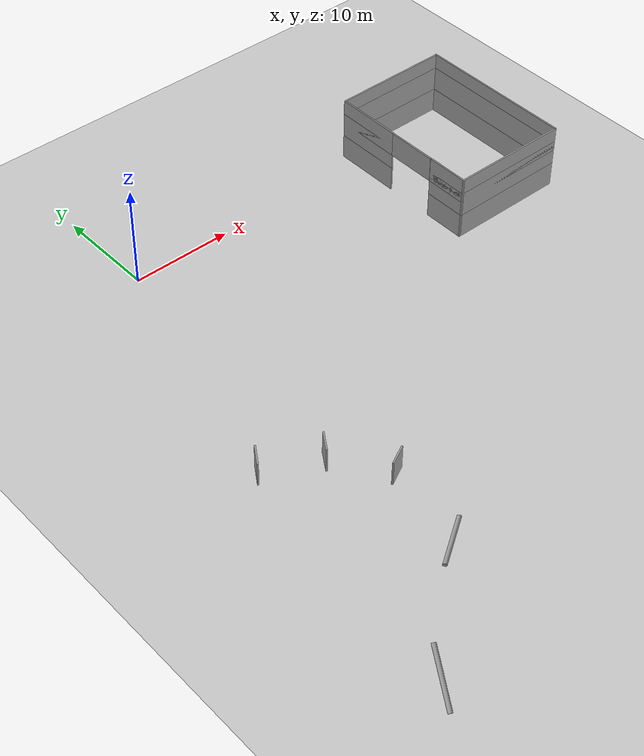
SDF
<sdf version="1.6">
 <world name="default">
  <model name="ground_plane">
   <static>1</static>
   <link name="link">
    <collision name="collision">
     <geometry><plane><normal>0 0 1</normal><size>100 100</size></plane></geometry>
     <surface><friction><ode><mu>100</mu><mu2>50</mu2></ode></friction></surface>
    </collision>
    <visual name="visual">
     <cast_shadows>0</cast_shadows>
     <geometry><plane><normal>0 0 1</normal><size>100 100</size></plane></geometry>
     <material>
      <script><uri>file://media/materials/scripts/gazebo.material</uri><name>Gazebo/Grey</name></script>
     </material>
    </visual>
   </link>
  </model>
  <model name="PaperTestTunnelHouse">
   <pose>31.9195 -6.3195 0 0 -0 0</pose>
   <link name="Wall_10">
    <collision name="Wall_10_Collision">
     <geometry><box><size>4.25 0.15 2.5</size></box></geometry>
     <pose>0 0 1.25 0 -0 0</pose>
    </collision>
    <visual name="Wall_10_Visual">
     <pose>0 0 1.25 0 -0 0</pose>
     <geometry><box><size>4.25 0.15 2.5</size></box></geometry>
     <material>
      <script><uri>file://media/materials/scripts/gazebo.material</uri><name>Gazebo/Grey</name></script>
      <ambient>1 1 1 1</ambient>
     </material>
     <meta><layer>0</layer></meta>
    </visual>
    <pose>-5.925 -5.875 0 0 -0 1.5708</pose>
   </link>
   <link name="Wall_6">
    <collision name="Wall_6_Collision">
     <geometry><box><size>6.75 0.15 2.5</size></box></geometry>
     <pose>0 0 1.25 0 -0 0</pose>
    </collision>
    <visual name="Wall_6_Visual">
     <pose>0 0 1.25 0 -0 0</pose>
     <geometry><box><size>6.75 0.15 2.5</size></box></geometry>
     <material>
      <script><uri>file://media/materials/scripts/gazebo.material</uri><name>Gazebo/Grey</name></script>
      <ambient>1 1 1 1</ambient>
     </material>
     <meta><layer>0</layer></meta>
    </visual>
    <pose>-5.925 4.625 0 0 -0 1.5708</pose>
   </link>
   <link name="Wall_7">
    <collision name="Wall_7_Collision">
     <geometry><box><size>12 0.15 2.5</size></box></geometry>
     <pose>0 0 1.25 0 -0 0</pose>
    </collision>
    <visual name="Wall_7_Visual">
     <pose>0 0 1.25 0 -0 0</pose>
     <geometry><box><size>12 0.15 2.5</size></box></geometry>
     <material>
      <script><uri>file://media/materials/scripts/gazebo.material</uri><name>Gazebo/Grey</name></script>
      <ambient>1 1 1 1</ambient>
     </material>
     <meta><layer>0</layer></meta>
    </visual>
    <pose>-0 7.925 0 0 -0 0</pose>
   </link>
   <link name="Wall_8">
    <collision name="Wall_8_Collision">
     <geometry><box><size>16 0.15 2.5</size></box></geometry>
     <pose>0 0 1.25 0 -0 0</pose>
    </collision>
    <visual name="Wall_8_Visual">
     <pose>0 0 1.25 0 -0 0</pose>
     <geometry><box><size>16 0.15 2.5</size></box></geometry>
     <material>
      <script><uri>file://media/materials/scripts/gazebo.material</uri><name>Gazebo/Grey</name></script>
      <ambient>1 1 1 1</ambient>
     </material>
     <meta><layer>0</layer></meta>
    </visual>
    <pose>5.925 0 0 0 -0 -1.5708</pose>
   </link>
   <link name="Wall_9">
    <collision name="Wall_9_Collision">
     <geometry><box><size>12 0.15 2.5</size></box></geometry>
     <pose>0 0 1.25 0 -0 0</pose>
    </collision>
    <visual name="Wall_9_Visual">
     <pose>0 0 1.25 0 -0 0</pose>
     <geometry><box><size>12 0.15 2.5</size></box></geometry>
     <material>
      <script><uri>file://media/materials/scripts/gazebo.material</uri><name>Gazebo/Grey</name></script>
      <ambient>1 1 1 1</ambient>
     </material>
     <meta><layer>0</layer></meta>
    </visual>
    <pose>-0 -7.925 0 0 -0 3.14159</pose>
   </link>
   <static>1</static>
  </model>
  <model name="PaperTestTunnelHouse_0">
   <pose>31.9195 -6.319 2.5 0 -0 0</pose>
   <link name="Wall_10">
    <collision name="Wall_10_Collision">
     <geometry><box><size>4.25 0.15 2.5</size></box></geometry>
     <pose>0 0 1.25 0 -0 0</pose>
    </collision>
    <visual name="Wall_10_Visual">
     <pose>0 0 1.25 0 -0 0</pose>
     <geometry><box><size>4.25 0.15 2.5</size></box></geometry>
     <material>
      <script><uri>file://media/materials/scripts/gazebo.material</uri><name>Gazebo/Grey</name></script>
      <ambient>1 1 1 1</ambient>
     </material>
     <meta><layer>0</layer></meta>
    </visual>
    <pose>-5.925 -5.875 0 0 -0 1.5708</pose>
   </link>
   <link name="Wall_6">
    <collision name="Wall_6_Collision">
     <geometry><box><size>6.75 0.15 2.5</size></box></geometry>
     <pose>0 0 1.25 0 -0 0</pose>
    </collision>
    <visual name="Wall_6_Visual">
     <pose>0 0 1.25 0 -0 0</pose>
     <geometry><box><size>6.75 0.15 2.5</size></box></geometry>
     <material>
      <script><uri>file://media/materials/scripts/gazebo.material</uri><name>Gazebo/Grey</name></script>
      <ambient>1 1 1 1</ambient>
     </material>
     <meta><layer>0</layer></meta>
    </visual>
    <pose>-5.925 4.625 0 0 -0 1.5708</pose>
   </link>
   <link name="Wall_7">
    <collision name="Wall_7_Collision">
     <geometry><box><size>12 0.15 2.5</size></box></geometry>
     <pose>0 0 1.25 0 -0 0</pose>
    </collision>
    <visual name="Wall_7_Visual">
     <pose>0 0 1.25 0 -0 0</pose>
     <geometry><box><size>12 0.15 2.5</size></box></geometry>
     <material>
      <script><uri>file://media/materials/scripts/gazebo.material</uri><name>Gazebo/Grey</name></script>
      <ambient>1 1 1 1</ambient>
     </material>
     <meta><layer>0</layer></meta>
    </visual>
    <pose>-0 7.925 0 0 -0 0</pose>
   </link>
   <link name="Wall_8">
    <collision name="Wall_8_Collision">
     <geometry><box><size>16 0.15 2.5</size></box></geometry>
     <pose>0 0 1.25 0 -0 0</pose>
    </collision>
    <visual name="Wall_8_Visual">
     <pose>0 0 1.25 0 -0 0</pose>
     <geometry><box><size>16 0.15 2.5</size></box></geometry>
     <material>
      <script><uri>file://media/materials/scripts/gazebo.material</uri><name>Gazebo/Grey</name></script>
      <ambient>1 1 1 1</ambient>
     </material>
     <meta><layer>0</layer></meta>
    </visual>
    <pose>5.925 0 0 0 -0 -1.5708</pose>
   </link>
   <link name="Wall_9">
    <collision name="Wall_9_Collision">
     <geometry><box><size>12 0.15 2.5</size></box></geometry>
     <pose>0 0 1.25 0 -0 0</pose>
    </collision>
    <visual name="Wall_9_Visual">
     <pose>0 0 1.25 0 -0 0</pose>
     <geometry><box><size>12 0.15 2.5</size></box></geometry>
     <material>
      <script><uri>file://media/materials/scripts/gazebo.material</uri><name>Gazebo/Grey</name></script>
      <ambient>1 1 1 1</ambient>
     </material>
     <meta><layer>0</layer></meta>
    </visual>
    <pose>-0 -7.925 0 0 -0 3.14159</pose>
   </link>
   <static>1</static>
  </model>
  <model name="5mWall">
   <pose>25.971 -7.56033 4 0 -0 0</pose>
   <link name="Wall_0">
    <collision name="Wall_0_Collision">
     <geometry><box><size>5 0.15 2.5</size></box></geometry>
     <pose>0 0 1.25 0 -0 0</pose>
    </collision>
    <visual name="Wall_0_Visual">
     <pose>0 0 1.25 0 -0 0</pose>
     <geometry><box><size>5 0.15 2.5</size></box></geometry>
     <material>
      <script><uri>file://media/materials/scripts/gazebo.material</uri><name>Gazebo/Grey</name></script>
      <ambient>1 1 1 1</ambient>
     </material>
     <meta><layer>0</layer></meta>
    </visual>
    <pose>0 -0 0 0 -0 1.5708</pose>
   </link>
   <static>1</static>
  </model>
  <model name="PaperTestTunnelHouse_1">
   <pose>31.9195 -6.319 4 0 -0 0</pose>
   <link name="Wall_10">
    <collision name="Wall_10_Collision">
     <geometry><box><size>4.25 0.15 2.5</size></box></geometry>
     <pose>0 0 1.25 0 -0 0</pose>
    </collision>
    <visual name="Wall_10_Visual">
     <pose>0 0 1.25 0 -0 0</pose>
     <geometry><box><size>4.25 0.15 2.5</size></box></geometry>
     <material>
      <script><uri>file://media/materials/scripts/gazebo.material</uri><name>Gazebo/Grey</name></script>
      <ambient>1 1 1 1</ambient>
     </material>
     <meta><layer>0</layer></meta>
    </visual>
    <pose>-5.925 -5.875 0 0 -0 1.5708</pose>
   </link>
   <link name="Wall_6">
    <collision name="Wall_6_Collision">
     <geometry><box><size>6.75 0.15 2.5</size></box></geometry>
     <pose>0 0 1.25 0 -0 0</pose>
    </collision>
    <visual name="Wall_6_Visual">
     <pose>0 0 1.25 0 -0 0</pose>
     <geometry><box><size>6.75 0.15 2.5</size></box></geometry>
     <material>
      <script><uri>file://media/materials/scripts/gazebo.material</uri><name>Gazebo/Grey</name></script>
      <ambient>1 1 1 1</ambient>
     </material>
     <meta><layer>0</layer></meta>
    </visual>
    <pose>-5.925 4.625 0 0 -0 1.5708</pose>
   </link>
   <link name="Wall_7">
    <collision name="Wall_7_Collision">
     <geometry><box><size>12 0.15 2.5</size></box></geometry>
     <pose>0 0 1.25 0 -0 0</pose>
    </collision>
    <visual name="Wall_7_Visual">
     <pose>0 0 1.25 0 -0 0</pose>
     <geometry><box><size>12 0.15 2.5</size></box></geometry>
     <material>
      <script><uri>file://media/materials/scripts/gazebo.material</uri><name>Gazebo/Grey</name></script>
      <ambient>1 1 1 1</ambient>
     </material>
     <meta><layer>0</layer></meta>
    </visual>
    <pose>-0 7.925 0 0 -0 0</pose>
   </link>
   <link name="Wall_8">
    <collision name="Wall_8_Collision">
     <geometry><box><size>16 0.15 2.5</size></box></geometry>
     <pose>0 0 1.25 0 -0 0</pose>
    </collision>
    <visual name="Wall_8_Visual">
     <pose>0 0 1.25 0 -0 0</pose>
     <geometry><box><size>16 0.15 2.5</size></box></geometry>
     <material>
      <script><uri>file://media/materials/scripts/gazebo.material</uri><name>Gazebo/Grey</name></script>
      <ambient>1 1 1 1</ambient>
     </material>
     <meta><layer>0</layer></meta>
    </visual>
    <pose>5.925 0 0 0 -0 -1.5708</pose>
   </link>
   <link name="Wall_9">
    <collision name="Wall_9_Collision">
     <geometry><box><size>12 0.15 2.5</size></box></geometry>
     <pose>0 0 1.25 0 -0 0</pose>
    </collision>
    <visual name="Wall_9_Visual">
     <pose>0 0 1.25 0 -0 0</pose>
     <geometry><box><size>12 0.15 2.5</size></box></geometry>
     <material>
      <script><uri>file://media/materials/scripts/gazebo.material</uri><name>Gazebo/Grey</name></script>
      <ambient>1 1 1 1</ambient>
     </material>
     <meta><layer>0</layer></meta>
    </visual>
    <pose>-0 -7.925 0 0 -0 3.14159</pose>
   </link>
   <static>1</static>
  </model>
  <model name="empty_pillar_1">
   <link name="link">
    <inertial>
     <mass>1</mass>
     <inertia><ixx>0.145833</ixx><ixy>0</ixy><ixz>0</ixz><iyy>0.145833</iyy><iyz>0</iyz><izz>0.125</izz></inertia>
    </inertial>
    <visual name="visual">
     <geometry><cylinder><radius>0.2</radius><length>5</length></cylinder></geometry>
     <material>
      <script><name>Gazebo/Grey</name><uri>file://media/materials/scripts/gazebo.material</uri></script>
      <shader type="vertex"><normal_map>__default__</normal_map></shader>
      <ambient>0.3 0.3 0.3 1</ambient>
      <diffuse>0.7 0.7 0.7 1</diffuse>
      <specular>0.01 0.01 0.01 1</specular>
      <emissive>0 0 0 1</emissive>
     </material>
    </visual>
    <collision name="collision">
     <geometry><cylinder><radius>0.05</radius><length>5</length></cylinder></geometry>
     <surface>
      <friction>
       <ode><mu>1</mu><mu2>1</mu2><fdir1>0 0 0</fdir1><slip1>0</slip1><slip2>0</slip2></ode>
       <torsional>
        <coefficient>1</coefficient>
        <patch_radius>0</patch_radius>
        <surface_radius>0</surface_radius>
        <use_patch_radius>1</use_patch_radius>
        <ode><slip>0</slip></ode>
       </torsional>
      </friction>
      <bounce><restitution_coefficient>0</restitution_coefficient><threshold>1e+06</threshold></bounce>
      <contact>
       <collide_without_contact>0</collide_without_contact>
       <collide_without_contact_bitmask>1</collide_without_contact_bitmask>
       <collide_bitmask>1</collide_bitmask>
       <ode>
        <soft_cfm>0</soft_cfm>
        <soft_erp>0.2</soft_erp>
        <kp>1e+13</kp>
        <kd>1</kd>
        <max_vel>0.01</max_vel>
        <min_depth>0</min_depth>
       </ode>
       <bullet>
        <split_impulse>1</split_impulse>
        <split_impulse_penetration_threshold>-0.01</split_impulse_penetration_threshold>
        <soft_cfm>0</soft_cfm>
        <soft_erp>0.2</soft_erp>
        <kp>1e+13</kp>
        <kd>1</kd>
       </bullet>
      </contact>
     </surface>
    </collision>
   </link>
   <static>0</static>
   <pose>0.363152 -39.6227 0.049995 -1.5708 0.874179 2.1469</pose>
  </model>
  <model name="empty_pillar_2">
   <link name="link">
    <inertial>
     <mass>1</mass>
     <inertia><ixx>0.145833</ixx><ixy>0</ixy><ixz>0</ixz><iyy>0.145833</iyy><iyz>0</iyz><izz>0.125</izz></inertia>
    </inertial>
    <visual name="visual">
     <geometry><cylinder><radius>0.2</radius><length>5</length></cylinder></geometry>
     <material>
      <script><name>Gazebo/Grey</name><uri>file://media/materials/scripts/gazebo.material</uri></script>
      <shader type="vertex"><normal_map>__default__</normal_map></shader>
      <ambient>0.3 0.3 0.3 1</ambient>
      <diffuse>0.7 0.7 0.7 1</diffuse>
      <specular>0.01 0.01 0.01 1</specular>
      <emissive>0 0 0 1</emissive>
     </material>
    </visual>
    <collision name="collision">
     <geometry><cylinder><radius>0.05</radius><length>5</length></cylinder></geometry>
     <surface>
      <friction>
       <ode><mu>1</mu><mu2>1</mu2><fdir1>0 0 0</fdir1><slip1>0</slip1><slip2>0</slip2></ode>
       <torsional>
        <coefficient>1</coefficient>
        <patch_radius>0</patch_radius>
        <surface_radius>0</surface_radius>
        <use_patch_radius>1</use_patch_radius>
        <ode><slip>0</slip></ode>
       </torsional>
      </friction>
      <bounce><restitution_coefficient>0</restitution_coefficient><threshold>1e+06</threshold></bounce>
      <contact>
       <collide_without_contact>0</collide_without_contact>
       <collide_without_contact_bitmask>1</collide_without_contact_bitmask>
       <collide_bitmask>1</collide_bitmask>
       <ode>
        <soft_cfm>0</soft_cfm>
        <soft_erp>0.2</soft_erp>
        <kp>1e+13</kp>
        <kd>1</kd>
        <max_vel>0.01</max_vel>
        <min_depth>0</min_depth>
       </ode>
       <bullet>
        <split_impulse>1</split_impulse>
        <split_impulse_penetration_threshold>-0.01</split_impulse_penetration_threshold>
        <soft_cfm>0</soft_cfm>
        <soft_erp>0.2</soft_erp>
        <kp>1e+13</kp>
        <kd>1</kd>
       </bullet>
      </contact>
     </surface>
    </collision>
   </link>
   <static>0</static>
   <pose>-9.55297 -48.6823 1.21927 -0.902988 0.708945 0.007</pose>
  </model>
  <model name="2mWall_33">
   <pose>-6.72212 -24.8225 0 0 -0 0.993249</pose>
   <link name="Wall_0">
    <collision name="Wall_0_Collision">
     <geometry><box><size>2 0.15 2.5</size></box></geometry>
     <pose>0 0 1.25 0 -0 0</pose>
    </collision>
    <visual name="Wall_0_Visual">
     <pose>0 0 1.25 0 -0 0</pose>
     <geometry><box><size>2 0.15 2.5</size></box></geometry>
     <material>
      <script><uri>file://media/materials/scripts/gazebo.material</uri><name>Gazebo/Grey</name></script>
      <ambient>1 1 1 1</ambient>
     </material>
     <meta><layer>0</layer></meta>
    </visual>
   </link>
   <static>1</static>
  </model>
  <model name="2mWall_33_clone">
   <pose>-1.67331 -27.2035 0 0 -0 0.993249</pose>
   <link name="Wall_0">
    <collision name="Wall_0_Collision">
     <geometry><box><size>2 0.15 2.5</size></box></geometry>
     <pose>0 0 1.25 0 -0 0</pose>
    </collision>
    <visual name="Wall_0_Visual">
     <pose>0 0 1.25 0 -0 0</pose>
     <geometry><box><size>2 0.15 2.5</size></box></geometry>
     <material>
      <script><uri>file://media/materials/scripts/gazebo.material</uri><name>Gazebo/Grey</name></script>
      <ambient>1 1 1 1</ambient>
     </material>
     <meta><layer>0</layer></meta>
    </visual>
   </link>
   <static>1</static>
  </model>
  <model name="2mWall_33_clone_0">
   <pose>1.6673 -32.0108 0 0 -0 0.463512</pose>
   <link name="Wall_0">
    <collision name="Wall_0_Collision">
     <geometry><box><size>2 0.15 2.5</size></box></geometry>
     <pose>0 0 1.25 0 -0 0</pose>
    </collision>
    <visual name="Wall_0_Visual">
     <pose>0 0 1.25 0 -0 0</pose>
     <geometry><box><size>2 0.15 2.5</size></box></geometry>
     <material>
      <script><uri>file://media/materials/scripts/gazebo.material</uri><name>Gazebo/Grey</name></script>
      <ambient>1 1 1 1</ambient>
     </material>
     <meta><layer>0</layer></meta>
    </visual>
   </link>
   <static>1</static>
  </model>
 </world>
</sdf>
